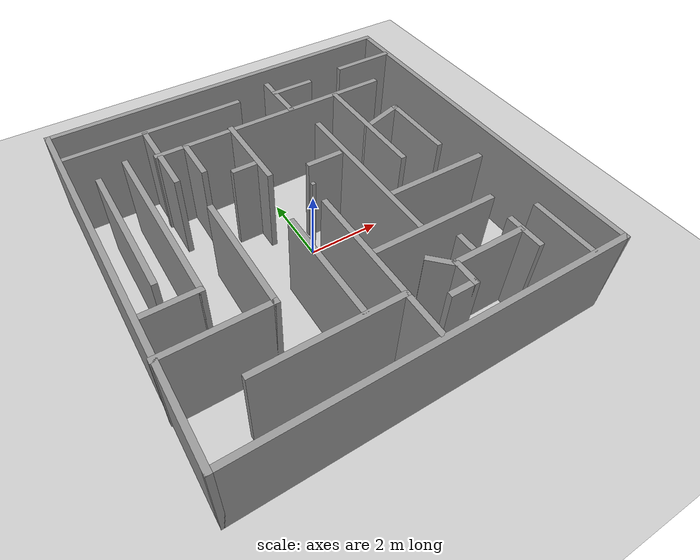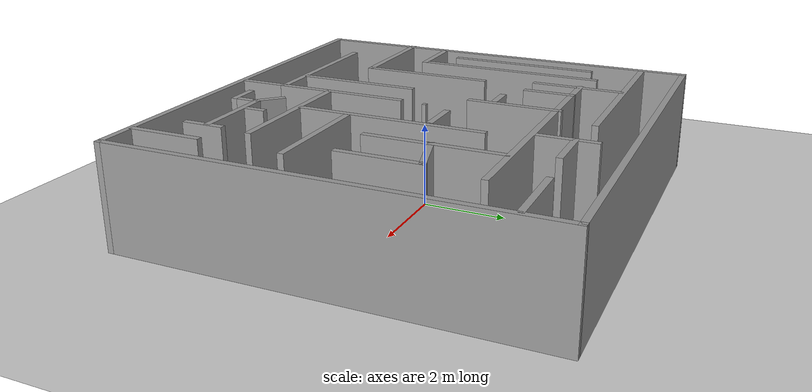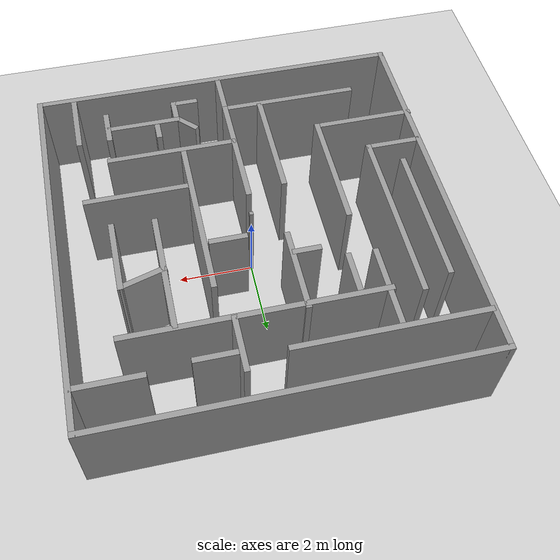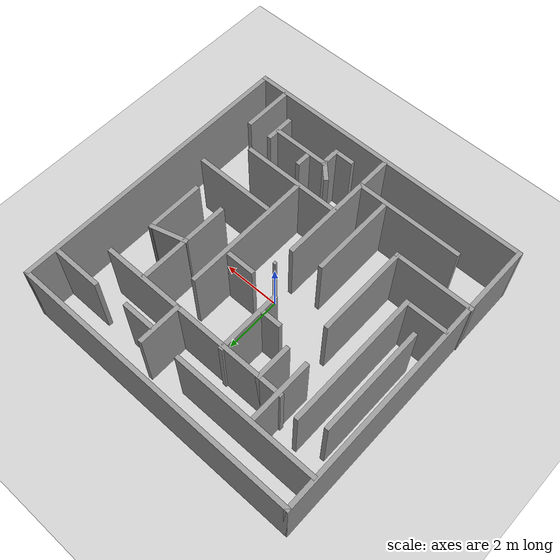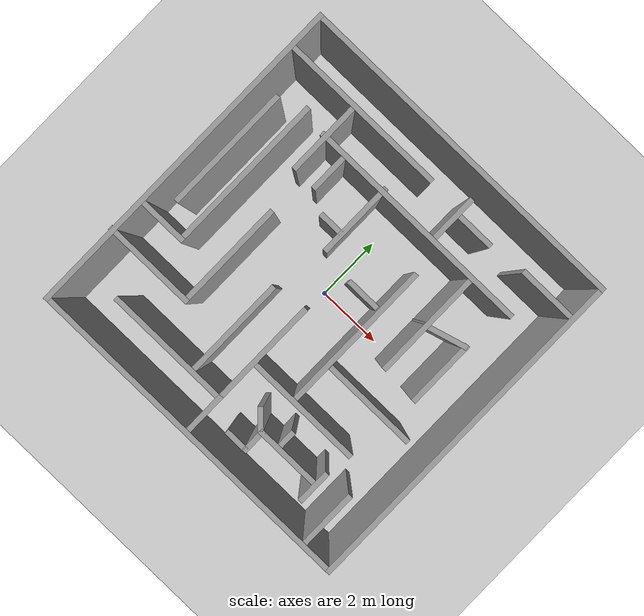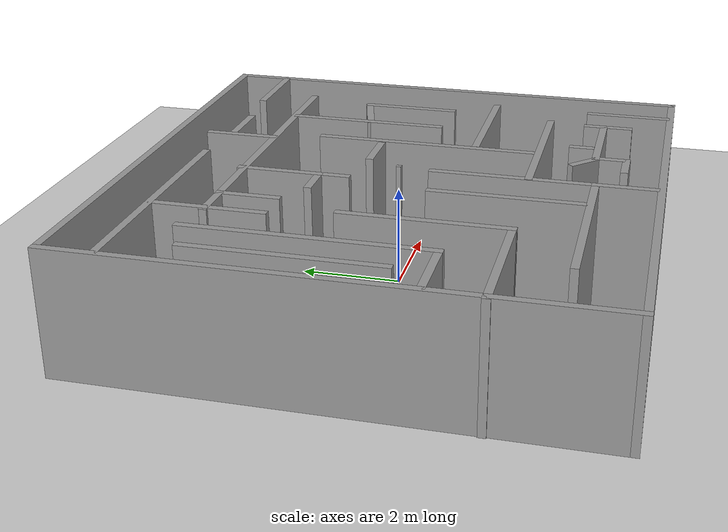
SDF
<?xml version='1.0' encoding='UTF-8'?>
<sdf version="1.7">
  <world name="default"><include><uri>model://ground_plane</uri></include><include><uri>model://sun</uri></include><physics type="ode"><max_step_size>0.001</max_step_size><real_time_factor>1</real_time_factor></physics><model name="test">
    <pose>-0.013662 0 0 0 -0 0</pose>
    <link name="Wall_12">
      <collision name="Wall_12_Collision">
        <geometry>
          <box>
            <size>0.1 0.1 2.5</size>
          </box>
        </geometry>
        <pose>0 0 1.25 0 -0 0</pose>
      </collision>
      <visual name="Wall_12_Visual">
        <pose>0 0 1.25 0 -0 0</pose>
        <geometry>
          <box>
            <size>0.1 0.1 2.5</size>
          </box>
        </geometry>
        <material>
          <script>
            <uri>file://media/materials/scripts/gazebo.material</uri>
            <name>Gazebo/Grey</name>
          </script>
          <ambient>1 1 1 1</ambient>
        </material>
        <meta>
          <layer>0</layer>
        </meta>
      </visual>
      <pose>0.013662 0 0 0 -0 0</pose>
    </link>
    <link name="Wall_17">
      <collision name="Wall_17_Collision">
        <geometry>
          <box>
            <size>10.15 0.15 2.5</size>
          </box>
        </geometry>
        <pose>0 0 1.25 0 -0 0</pose>
      </collision>
      <visual name="Wall_17_Visual">
        <pose>0 0 1.25 0 -0 0</pose>
        <geometry>
          <box>
            <size>10.15 0.15 2.5</size>
          </box>
        </geometry>
        <material>
          <script>
            <uri>file://media/materials/scripts/gazebo.material</uri>
            <name>Gazebo/Grey</name>
          </script>
          <ambient>1 1 1 1</ambient>
        </material>
        <meta>
          <layer>0</layer>
        </meta>
      </visual>
      <pose>-4.98634 0 0 0 -0 1.5708</pose>
    </link>
    <link name="Wall_19">
      <collision name="Wall_19_Collision">
        <geometry>
          <box>
            <size>10.15 0.15 2.5</size>
          </box>
        </geometry>
        <pose>0 0 1.25 0 -0 0</pose>
      </collision>
      <visual name="Wall_19_Visual">
        <pose>0 0 1.25 0 -0 0</pose>
        <geometry>
          <box>
            <size>10.15 0.15 2.5</size>
          </box>
        </geometry>
        <material>
          <script>
            <uri>file://media/materials/scripts/gazebo.material</uri>
            <name>Gazebo/Grey</name>
          </script>
          <ambient>1 1 1 1</ambient>
        </material>
        <meta>
          <layer>0</layer>
        </meta>
      </visual>
      <pose>0.013662 5 0 0 -0 0</pose>
    </link>
    <link name="Wall_21">
      <collision name="Wall_21_Collision">
        <geometry>
          <box>
            <size>10.15 0.15 2.5</size>
          </box>
        </geometry>
        <pose>0 0 1.25 0 -0 0</pose>
      </collision>
      <visual name="Wall_21_Visual">
        <pose>0 0 1.25 0 -0 0</pose>
        <geometry>
          <box>
            <size>10.15 0.15 2.5</size>
          </box>
        </geometry>
        <material>
          <script>
            <uri>file://media/materials/scripts/gazebo.material</uri>
            <name>Gazebo/Grey</name>
          </script>
          <ambient>1 1 1 1</ambient>
        </material>
        <meta>
          <layer>0</layer>
        </meta>
      </visual>
      <pose>5.01366 0 0 0 -0 -1.5708</pose>
    </link>
    <link name="Wall_23">
      <collision name="Wall_23_Collision">
        <geometry>
          <box>
            <size>10.15 0.15 2.5</size>
          </box>
        </geometry>
        <pose>0 0 1.25 0 -0 0</pose>
      </collision>
      <visual name="Wall_23_Visual">
        <pose>0 0 1.25 0 -0 0</pose>
        <geometry>
          <box>
            <size>10.15 0.15 2.5</size>
          </box>
        </geometry>
        <material>
          <script>
            <uri>file://media/materials/scripts/gazebo.material</uri>
            <name>Gazebo/Grey</name>
          </script>
          <ambient>1 1 1 1</ambient>
        </material>
        <meta>
          <layer>0</layer>
        </meta>
      </visual>
      <pose>0.013662 -5 0 0 -0 0</pose>
    </link>
    <link name="Wall_25">
      <collision name="Wall_25_Collision">
        <geometry>
          <box>
            <size>1.25 0.15 2.5</size>
          </box>
        </geometry>
        <pose>0 0 1.25 0 -0 0</pose>
      </collision>
      <visual name="Wall_25_Visual">
        <pose>0 0 1.25 0 -0 0</pose>
        <geometry>
          <box>
            <size>1.25 0.15 2.5</size>
          </box>
        </geometry>
        <material>
          <script>
            <uri>file://media/materials/scripts/gazebo.material</uri>
            <name>Gazebo/Grey</name>
          </script>
          <ambient>1 1 1 1</ambient>
        </material>
        <meta>
          <layer>0</layer>
        </meta>
      </visual>
      <pose>-0.058046 -4.33319 0 0 -0 1.5708</pose>
    </link>
    <link name="Wall_27">
      <collision name="Wall_27_Collision">
        <geometry>
          <box>
            <size>3.75 0.15 2.5</size>
          </box>
        </geometry>
        <pose>0 0 1.25 0 -0 0</pose>
      </collision>
      <visual name="Wall_27_Visual">
        <pose>0 0 1.25 0 -0 0</pose>
        <geometry>
          <box>
            <size>3.75 0.15 2.5</size>
          </box>
        </geometry>
        <material>
          <script>
            <uri>file://media/materials/scripts/gazebo.material</uri>
            <name>Gazebo/Grey</name>
          </script>
          <ambient>1 1 1 1</ambient>
        </material>
        <meta>
          <layer>0</layer>
        </meta>
      </visual>
      <pose>-1.85805 -3.78319 0 0 -0 3.14159</pose>
    </link>
    <link name="Wall_29">
      <collision name="Wall_29_Collision">
        <geometry>
          <box>
            <size>3.25 0.15 2.5</size>
          </box>
        </geometry>
        <pose>0 0 1.25 0 -0 0</pose>
      </collision>
      <visual name="Wall_29_Visual">
        <pose>0 0 1.25 0 -0 0</pose>
        <geometry>
          <box>
            <size>3.25 0.15 2.5</size>
          </box>
        </geometry>
        <material>
          <script>
            <uri>file://media/materials/scripts/gazebo.material</uri>
            <name>Gazebo/Grey</name>
          </script>
          <ambient>1 1 1 1</ambient>
        </material>
        <meta>
          <layer>0</layer>
        </meta>
      </visual>
      <pose>-0.058046 -2.23319 0 0 -0 1.5708</pose>
    </link>
    <link name="Wall_31">
      <collision name="Wall_31_Collision">
        <geometry>
          <box>
            <size>3 0.15 2.5</size>
          </box>
        </geometry>
        <pose>0 0 1.25 0 -0 0</pose>
      </collision>
      <visual name="Wall_31_Visual">
        <pose>0 0 1.25 0 -0 0</pose>
        <geometry>
          <box>
            <size>3 0.15 2.5</size>
          </box>
        </geometry>
        <material>
          <script>
            <uri>file://media/materials/scripts/gazebo.material</uri>
            <name>Gazebo/Grey</name>
          </script>
          <ambient>1 1 1 1</ambient>
        </material>
        <meta>
          <layer>0</layer>
        </meta>
      </visual>
      <pose>-1.03693 -2.26517 0 0 -0 1.5708</pose>
    </link>
    <link name="Wall_33">
      <collision name="Wall_33_Collision">
        <geometry>
          <box>
            <size>2.75 0.15 2.5</size>
          </box>
        </geometry>
        <pose>0 0 1.25 0 -0 0</pose>
      </collision>
      <visual name="Wall_33_Visual">
        <pose>0 0 1.25 0 -0 0</pose>
        <geometry>
          <box>
            <size>2.75 0.15 2.5</size>
          </box>
        </geometry>
        <material>
          <script>
            <uri>file://media/materials/scripts/gazebo.material</uri>
            <name>Gazebo/Grey</name>
          </script>
          <ambient>1 1 1 1</ambient>
        </material>
        <meta>
          <layer>0</layer>
        </meta>
      </visual>
      <pose>-3.71366 -2.58892 0 0 -0 0</pose>
    </link>
    <link name="Wall_34">
      <collision name="Wall_34_Collision">
        <geometry>
          <box>
            <size>3.25 0.15 2.5</size>
          </box>
        </geometry>
        <pose>0 0 1.25 0 -0 0</pose>
      </collision>
      <visual name="Wall_34_Visual">
        <pose>0 0 1.25 0 -0 0</pose>
        <geometry>
          <box>
            <size>3.25 0.15 2.5</size>
          </box>
        </geometry>
        <material>
          <script>
            <uri>file://media/materials/scripts/gazebo.material</uri>
            <name>Gazebo/Grey</name>
          </script>
          <ambient>1 1 1 1</ambient>
        </material>
        <meta>
          <layer>0</layer>
        </meta>
      </visual>
      <pose>-2.41366 -1.03892 0 0 -0 1.5708</pose>
    </link>
    <link name="Wall_36">
      <collision name="Wall_36_Collision">
        <geometry>
          <box>
            <size>1.5 0.15 2.5</size>
          </box>
        </geometry>
        <pose>0 0 1.25 0 -0 0</pose>
      </collision>
      <visual name="Wall_36_Visual">
        <pose>0 0 1.25 0 -0 0</pose>
        <geometry>
          <box>
            <size>1.5 0.15 2.5</size>
          </box>
        </geometry>
        <material>
          <script>
            <uri>file://media/materials/scripts/gazebo.material</uri>
            <name>Gazebo/Grey</name>
          </script>
          <ambient>1 1 1 1</ambient>
        </material>
        <meta>
          <layer>0</layer>
        </meta>
      </visual>
      <pose>-4.25092 -1.54885 0 0 -0 3.14159</pose>
    </link>
    <link name="Wall_38">
      <collision name="Wall_38_Collision">
        <geometry>
          <box>
            <size>4.75 0.15 2.5</size>
          </box>
        </geometry>
        <pose>0 0 1.25 0 -0 0</pose>
      </collision>
      <visual name="Wall_38_Visual">
        <pose>0 0 1.25 0 -0 0</pose>
        <geometry>
          <box>
            <size>4.75 0.15 2.5</size>
          </box>
        </geometry>
        <material>
          <script>
            <uri>file://media/materials/scripts/gazebo.material</uri>
            <name>Gazebo/Grey</name>
          </script>
          <ambient>1 1 1 1</ambient>
        </material>
        <meta>
          <layer>0</layer>
        </meta>
      </visual>
      <pose>-3.57592 0.751148 0 0 -0 1.5708</pose>
    </link>
    <link name="Wall_40">
      <collision name="Wall_40_Collision">
        <geometry>
          <box>
            <size>3.75 0.15 2.5</size>
          </box>
        </geometry>
        <pose>0 0 1.25 0 -0 0</pose>
      </collision>
      <visual name="Wall_40_Visual">
        <pose>0 0 1.25 0 -0 0</pose>
        <geometry>
          <box>
            <size>3.75 0.15 2.5</size>
          </box>
        </geometry>
        <material>
          <script>
            <uri>file://media/materials/scripts/gazebo.material</uri>
            <name>Gazebo/Grey</name>
          </script>
          <ambient>1 1 1 1</ambient>
        </material>
        <meta>
          <layer>0</layer>
        </meta>
      </visual>
      <pose>-4.34068 0.924133 0 0 -0 1.5708</pose>
    </link>
    <link name="Wall_42">
      <collision name="Wall_42_Collision">
        <geometry>
          <box>
            <size>5 0.15 2.5</size>
          </box>
        </geometry>
        <pose>0 0 1.25 0 -0 0</pose>
      </collision>
      <visual name="Wall_42_Visual">
        <pose>0 0 1.25 0 -0 0</pose>
        <geometry>
          <box>
            <size>5 0.15 2.5</size>
          </box>
        </geometry>
        <material>
          <script>
            <uri>file://media/materials/scripts/gazebo.material</uri>
            <name>Gazebo/Grey</name>
          </script>
          <ambient>1 1 1 1</ambient>
        </material>
        <meta>
          <layer>0</layer>
        </meta>
      </visual>
      <pose>-2.49689 3.95739 0 0 -0 0</pose>
    </link>
    <link name="Wall_44">
      <collision name="Wall_44_Collision">
        <geometry>
          <box>
            <size>2.25 0.15 2.5</size>
          </box>
        </geometry>
        <pose>0 0 1.25 0 -0 0</pose>
      </collision>
      <visual name="Wall_44_Visual">
        <pose>0 0 1.25 0 -0 0</pose>
        <geometry>
          <box>
            <size>2.25 0.15 2.5</size>
          </box>
        </geometry>
        <material>
          <script>
            <uri>file://media/materials/scripts/gazebo.material</uri>
            <name>Gazebo/Grey</name>
          </script>
          <ambient>1 1 1 1</ambient>
        </material>
        <meta>
          <layer>0</layer>
        </meta>
      </visual>
      <pose>-2.74999 2.84621 0 0 -0 -1.5708</pose>
    </link>
    <link name="Wall_46">
      <collision name="Wall_46_Collision">
        <geometry>
          <box>
            <size>6.75 0.15 2.5</size>
          </box>
        </geometry>
        <pose>0 0 1.25 0 -0 0</pose>
      </collision>
      <visual name="Wall_46_Visual">
        <pose>0 0 1.25 0 -0 0</pose>
        <geometry>
          <box>
            <size>6.75 0.15 2.5</size>
          </box>
        </geometry>
        <material>
          <script>
            <uri>file://media/materials/scripts/gazebo.material</uri>
            <name>Gazebo/Grey</name>
          </script>
          <ambient>1 1 1 1</ambient>
        </material>
        <meta>
          <layer>0</layer>
        </meta>
      </visual>
      <pose>0.488833 2.88673 0 0 -0 0</pose>
    </link>
    <link name="Wall_48">
      <collision name="Wall_48_Collision">
        <geometry>
          <box>
            <size>1.5 0.15 2.5</size>
          </box>
        </geometry>
        <pose>0 0 1.25 0 -0 0</pose>
      </collision>
      <visual name="Wall_48_Visual">
        <pose>0 0 1.25 0 -0 0</pose>
        <geometry>
          <box>
            <size>1.5 0.15 2.5</size>
          </box>
        </geometry>
        <material>
          <script>
            <uri>file://media/materials/scripts/gazebo.material</uri>
            <name>Gazebo/Grey</name>
          </script>
          <ambient>1 1 1 1</ambient>
        </material>
        <meta>
          <layer>0</layer>
        </meta>
      </visual>
      <pose>1.0432 3.59232 0 0 -0 1.5708</pose>
    </link>
    <link name="Wall_50">
      <collision name="Wall_50_Collision">
        <geometry>
          <box>
            <size>1.25 0.15 2.5</size>
          </box>
        </geometry>
        <pose>0 0 1.25 0 -0 0</pose>
      </collision>
      <visual name="Wall_50_Visual">
        <pose>0 0 1.25 0 -0 0</pose>
        <geometry>
          <box>
            <size>1.25 0.15 2.5</size>
          </box>
        </geometry>
        <material>
          <script>
            <uri>file://media/materials/scripts/gazebo.material</uri>
            <name>Gazebo/Grey</name>
          </script>
          <ambient>1 1 1 1</ambient>
        </material>
        <meta>
          <layer>0</layer>
        </meta>
      </visual>
      <pose>1.5932 3.80444 0 0 -0 0</pose>
    </link>
    <link name="Wall_52">
      <collision name="Wall_52_Collision">
        <geometry>
          <box>
            <size>1.75 0.15 2.5</size>
          </box>
        </geometry>
        <pose>0 0 1.25 0 -0 0</pose>
      </collision>
      <visual name="Wall_52_Visual">
        <pose>0 0 1.25 0 -0 0</pose>
        <geometry>
          <box>
            <size>1.75 0.15 2.5</size>
          </box>
        </geometry>
        <material>
          <script>
            <uri>file://media/materials/scripts/gazebo.material</uri>
            <name>Gazebo/Grey</name>
          </script>
          <ambient>1 1 1 1</ambient>
        </material>
        <meta>
          <layer>0</layer>
        </meta>
      </visual>
      <pose>4.12816 3.9268 0 0 -0 3.14159</pose>
    </link>
    <link name="Wall_54">
      <collision name="Wall_54_Collision">
        <geometry>
          <box>
            <size>2.25 0.15 2.5</size>
          </box>
        </geometry>
        <pose>0 0 1.25 0 -0 0</pose>
      </collision>
      <visual name="Wall_54_Visual">
        <pose>0 0 1.25 0 -0 0</pose>
        <geometry>
          <box>
            <size>2.25 0.15 2.5</size>
          </box>
        </geometry>
        <material>
          <script>
            <uri>file://media/materials/scripts/gazebo.material</uri>
            <name>Gazebo/Grey</name>
          </script>
          <ambient>1 1 1 1</ambient>
        </material>
        <meta>
          <layer>0</layer>
        </meta>
      </visual>
      <pose>-0.731031 1.89791 0 0 -0 -1.5708</pose>
    </link>
    <link name="Wall_56">
      <collision name="Wall_56_Collision">
        <geometry>
          <box>
            <size>0.75 0.15 2.5</size>
          </box>
        </geometry>
        <pose>0 0 1.25 0 -0 0</pose>
      </collision>
      <visual name="Wall_56_Visual">
        <pose>0 0 1.25 0 -0 0</pose>
        <geometry>
          <box>
            <size>0.75 0.15 2.5</size>
          </box>
        </geometry>
        <material>
          <script>
            <uri>file://media/materials/scripts/gazebo.material</uri>
            <name>Gazebo/Grey</name>
          </script>
          <ambient>1 1 1 1</ambient>
        </material>
        <meta>
          <layer>0</layer>
        </meta>
      </visual>
      <pose>-1.09221 1.38781 0 0 -0 3.14159</pose>
    </link>
    <link name="Wall_58">
      <collision name="Wall_58_Collision">
        <geometry>
          <box>
            <size>1.25 0.15 2.5</size>
          </box>
        </geometry>
        <pose>0 0 1.25 0 -0 0</pose>
      </collision>
      <visual name="Wall_58_Visual">
        <pose>0 0 1.25 0 -0 0</pose>
        <geometry>
          <box>
            <size>1.25 0.15 2.5</size>
          </box>
        </geometry>
        <material>
          <script>
            <uri>file://media/materials/scripts/gazebo.material</uri>
            <name>Gazebo/Grey</name>
          </script>
          <ambient>1 1 1 1</ambient>
        </material>
        <meta>
          <layer>0</layer>
        </meta>
      </visual>
      <pose>-2.04641 2.33673 0 0 -0 -1.5708</pose>
    </link>
    <link name="Wall_60">
      <collision name="Wall_60_Collision">
        <geometry>
          <box>
            <size>3.5 0.15 2.5</size>
          </box>
        </geometry>
        <pose>0 0 1.25 0 -0 0</pose>
      </collision>
      <visual name="Wall_60_Visual">
        <pose>0 0 1.25 0 -0 0</pose>
        <geometry>
          <box>
            <size>3.5 0.15 2.5</size>
          </box>
        </geometry>
        <material>
          <script>
            <uri>file://media/materials/scripts/gazebo.material</uri>
            <name>Gazebo/Grey</name>
          </script>
          <ambient>1 1 1 1</ambient>
        </material>
        <meta>
          <layer>0</layer>
        </meta>
      </visual>
      <pose>1.64754 -2.52774 0 0 -0 0</pose>
    </link>
    <link name="Wall_62">
      <collision name="Wall_62_Collision">
        <geometry>
          <box>
            <size>1 0.15 2.5</size>
          </box>
        </geometry>
        <pose>0 0 1.25 0 -0 0</pose>
      </collision>
      <visual name="Wall_62_Visual">
        <pose>0 0 1.25 0 -0 0</pose>
        <geometry>
          <box>
            <size>1 0.15 2.5</size>
          </box>
        </geometry>
        <material>
          <script>
            <uri>file://media/materials/scripts/gazebo.material</uri>
            <name>Gazebo/Grey</name>
          </script>
          <ambient>1 1 1 1</ambient>
        </material>
        <meta>
          <layer>0</layer>
        </meta>
      </visual>
      <pose>3.2457 -3.74809 0 0 -0 -1.5708</pose>
    </link>
    <link name="Wall_64">
      <collision name="Wall_64_Collision">
        <geometry>
          <box>
            <size>2 0.15 2.5</size>
          </box>
        </geometry>
        <pose>0 0 1.25 0 -0 0</pose>
      </collision>
      <visual name="Wall_64_Visual">
        <pose>0 0 1.25 0 -0 0</pose>
        <geometry>
          <box>
            <size>2 0.15 2.5</size>
          </box>
        </geometry>
        <material>
          <script>
            <uri>file://media/materials/scripts/gazebo.material</uri>
            <name>Gazebo/Grey</name>
          </script>
          <ambient>1 1 1 1</ambient>
        </material>
        <meta>
          <layer>0</layer>
        </meta>
      </visual>
      <pose>2.25952 -3.65958 0 0 -0 3.14159</pose>
    </link>
    <link name="Wall_66">
      <collision name="Wall_66_Collision">
        <geometry>
          <box>
            <size>0.5 0.15 2.5</size>
          </box>
        </geometry>
        <pose>0 0 1.25 0 -0 0</pose>
      </collision>
      <visual name="Wall_66_Visual">
        <pose>0 0 1.25 0 -0 0</pose>
        <geometry>
          <box>
            <size>0.5 0.15 2.5</size>
          </box>
        </geometry>
        <material>
          <script>
            <uri>file://media/materials/scripts/gazebo.material</uri>
            <name>Gazebo/Grey</name>
          </script>
          <ambient>1 1 1 1</ambient>
        </material>
        <meta>
          <layer>0</layer>
        </meta>
      </visual>
      <pose>1.89973 -3.33163 0 0 -0 1.5708</pose>
    </link>
    <link name="Wall_68">
      <collision name="Wall_68_Collision">
        <geometry>
          <box>
            <size>0.75 0.15 2.5</size>
          </box>
        </geometry>
        <pose>0 0 1.25 0 -0 0</pose>
      </collision>
      <visual name="Wall_68_Visual">
        <pose>0 0 1.25 0 -0 0</pose>
        <geometry>
          <box>
            <size>0.75 0.15 2.5</size>
          </box>
        </geometry>
        <material>
          <script>
            <uri>file://media/materials/scripts/gazebo.material</uri>
            <name>Gazebo/Grey</name>
          </script>
          <ambient>1 1 1 1</ambient>
        </material>
        <meta>
          <layer>0</layer>
        </meta>
      </visual>
      <pose>1.33452 -3.95958 0 0 -0 -1.5708</pose>
    </link>
    <link name="Wall_70">
      <collision name="Wall_70_Collision">
        <geometry>
          <box>
            <size>0.75 0.15 2.5</size>
          </box>
        </geometry>
        <pose>0 0 1.25 0 -0 0</pose>
      </collision>
      <visual name="Wall_70_Visual">
        <pose>0 0 1.25 0 -0 0</pose>
        <geometry>
          <box>
            <size>0.75 0.15 2.5</size>
          </box>
        </geometry>
        <material>
          <script>
            <uri>file://media/materials/scripts/gazebo.material</uri>
            <name>Gazebo/Grey</name>
          </script>
          <ambient>1 1 1 1</ambient>
        </material>
        <meta>
          <layer>0</layer>
        </meta>
      </visual>
      <pose>1.03452 -4.25958 0 0 -0 3.14159</pose>
    </link>
    <link name="Wall_72">
      <collision name="Wall_72_Collision">
        <geometry>
          <box>
            <size>0.75 0.15 2.5</size>
          </box>
        </geometry>
        <pose>0 0 1.25 0 -0 0</pose>
      </collision>
      <visual name="Wall_72_Visual">
        <pose>0 0 1.25 0 -0 0</pose>
        <geometry>
          <box>
            <size>0.75 0.15 2.5</size>
          </box>
        </geometry>
        <material>
          <script>
            <uri>file://media/materials/scripts/gazebo.material</uri>
            <name>Gazebo/Grey</name>
          </script>
          <ambient>1 1 1 1</ambient>
        </material>
        <meta>
          <layer>0</layer>
        </meta>
      </visual>
      <pose>1.10638 -3.47804 0 0 -0 2.35619</pose>
    </link>
    <link name="Wall_74">
      <collision name="Wall_74_Collision">
        <geometry>
          <box>
            <size>4.5 0.15 2.5</size>
          </box>
        </geometry>
        <pose>0 0 1.25 0 -0 0</pose>
      </collision>
      <visual name="Wall_74_Visual">
        <pose>0 0 1.25 0 -0 0</pose>
        <geometry>
          <box>
            <size>4.5 0.15 2.5</size>
          </box>
        </geometry>
        <material>
          <script>
            <uri>file://media/materials/scripts/gazebo.material</uri>
            <name>Gazebo/Grey</name>
          </script>
          <ambient>1 1 1 1</ambient>
        </material>
        <meta>
          <layer>0</layer>
        </meta>
      </visual>
      <pose>1.3491 -0.260969 0 0 -0 1.5708</pose>
    </link>
    <link name="Wall_76">
      <collision name="Wall_76_Collision">
        <geometry>
          <box>
            <size>1 0.15 2.5</size>
          </box>
        </geometry>
        <pose>0 0 1.25 0 -0 0</pose>
      </collision>
      <visual name="Wall_76_Visual">
        <pose>0 0 1.25 0 -0 0</pose>
        <geometry>
          <box>
            <size>1 0.15 2.5</size>
          </box>
        </geometry>
        <material>
          <script>
            <uri>file://media/materials/scripts/gazebo.material</uri>
            <name>Gazebo/Grey</name>
          </script>
          <ambient>1 1 1 1</ambient>
        </material>
        <meta>
          <layer>0</layer>
        </meta>
      </visual>
      <pose>0.740563 0.653644 0 0 -0 3.14159</pose>
    </link>
    <link name="Wall_78">
      <collision name="Wall_78_Collision">
        <geometry>
          <box>
            <size>3.25 0.15 2.5</size>
          </box>
        </geometry>
        <pose>0 0 1.25 0 -0 0</pose>
      </collision>
      <visual name="Wall_78_Visual">
        <pose>0 0 1.25 0 -0 0</pose>
        <geometry>
          <box>
            <size>3.25 0.15 2.5</size>
          </box>
        </geometry>
        <material>
          <script>
            <uri>file://media/materials/scripts/gazebo.material</uri>
            <name>Gazebo/Grey</name>
          </script>
          <ambient>1 1 1 1</ambient>
        </material>
        <meta>
          <layer>0</layer>
        </meta>
      </visual>
      <pose>2.45035 1.27555 0 0 -0 -1.5708</pose>
    </link>
    <link name="Wall_80">
      <collision name="Wall_80_Collision">
        <geometry>
          <box>
            <size>2.75 0.15 2.5</size>
          </box>
        </geometry>
        <pose>0 0 1.25 0 -0 0</pose>
      </collision>
      <visual name="Wall_80_Visual">
        <pose>0 0 1.25 0 -0 0</pose>
        <geometry>
          <box>
            <size>2.75 0.15 2.5</size>
          </box>
        </geometry>
        <material>
          <script>
            <uri>file://media/materials/scripts/gazebo.material</uri>
            <name>Gazebo/Grey</name>
          </script>
          <ambient>1 1 1 1</ambient>
        </material>
        <meta>
          <layer>0</layer>
        </meta>
      </visual>
      <pose>2.80206 -1.24295 0 0 -0 0</pose>
    </link>
    <link name="Wall_83">
      <collision name="Wall_83_Collision">
        <geometry>
          <box>
            <size>1.2623 0.15 2.5</size>
          </box>
        </geometry>
        <pose>0 0 1.25 0 -0 0</pose>
      </collision>
      <visual name="Wall_83_Visual">
        <pose>0 0 1.25 0 -0 0</pose>
        <geometry>
          <box>
            <size>1.2623 0.15 2.5</size>
          </box>
        </geometry>
        <material>
          <script>
            <uri>file://media/materials/scripts/gazebo.material</uri>
            <name>Gazebo/Grey</name>
          </script>
          <ambient>1 1 1 1</ambient>
        </material>
        <meta>
          <layer>0</layer>
        </meta>
      </visual>
      <pose>2.98506 1.35722 0 0 -0 0.278608</pose>
    </link>
    <link name="Wall_85">
      <collision name="Wall_85_Collision">
        <geometry>
          <box>
            <size>2 0.15 2.5</size>
          </box>
        </geometry>
        <pose>0 0 1.25 0 -0 0</pose>
      </collision>
      <visual name="Wall_85_Visual">
        <pose>0 0 1.25 0 -0 0</pose>
        <geometry>
          <box>
            <size>2 0.15 2.5</size>
          </box>
        </geometry>
        <material>
          <script>
            <uri>file://media/materials/scripts/gazebo.material</uri>
            <name>Gazebo/Grey</name>
          </script>
          <ambient>1 1 1 1</ambient>
        </material>
        <meta>
          <layer>0</layer>
        </meta>
      </visual>
      <pose>3.55035 0.585171 0 0 -0 -1.5708</pose>
    </link>
    <link name="Wall_87">
      <collision name="Wall_87_Collision">
        <geometry>
          <box>
            <size>1.75 0.15 2.5</size>
          </box>
        </geometry>
        <pose>0 0 1.25 0 -0 0</pose>
      </collision>
      <visual name="Wall_87_Visual">
        <pose>0 0 1.25 0 -0 0</pose>
        <geometry>
          <box>
            <size>1.75 0.15 2.5</size>
          </box>
        </geometry>
        <material>
          <script>
            <uri>file://media/materials/scripts/gazebo.material</uri>
            <name>Gazebo/Grey</name>
          </script>
          <ambient>1 1 1 1</ambient>
        </material>
        <meta>
          <layer>0</layer>
        </meta>
      </visual>
      <pose>4.07163 -4.11378 0 0 -0 1.5708</pose>
    </link>
    <static>1</static>
  </model>
</world>
</sdf>
